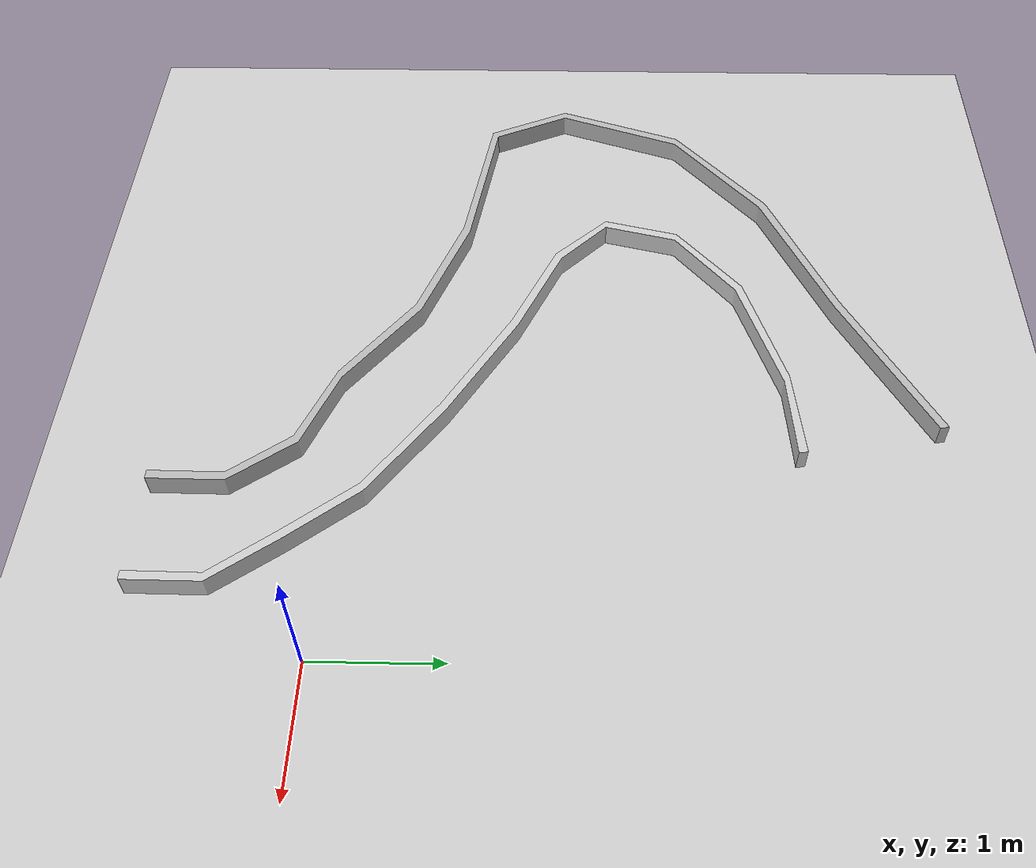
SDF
<sdf version='1.10'>
  <world name='empty'>
    <physics type='ode'>
      <real_time_update_rate>1000</real_time_update_rate>
      <max_step_size>0.001</max_step_size>
      <real_time_factor>1</real_time_factor>
      <ode>
        <solver>
          <type>quick</type>
          <iters>150</iters>
          <precon_iters>0</precon_iters>
          <sor>1.3999999999999999</sor>
          <use_dynamic_moi_rescaling>true</use_dynamic_moi_rescaling>
        </solver>
        <constraints>
          <cfm>1.0000000000000001e-05</cfm>
          <erp>0.20000000000000001</erp>
          <contact_max_correcting_vel>2000</contact_max_correcting_vel>
          <contact_surface_layer>0.01</contact_surface_layer>
        </constraints>
      </ode>
    </physics>
    <plugin name='gz::sim::systems::Physics' filename='gz-sim-physics-system'/>
    <plugin name='gz::sim::systems::UserCommands' filename='gz-sim-user-commands-system'/>
    <plugin name='gz::sim::systems::SceneBroadcaster' filename='gz-sim-scene-broadcaster-system'/>
    <plugin name='gz::sim::systems::Sensors' filename='gz-sim-sensors-system'>
      <render_engine>ogre2</render_engine>
    </plugin>
    <plugin name='gz::sim::systems::Imu' filename='gz-sim-imu-system'/>
    <gravity>0 0 -9.8000000000000007</gravity>
    <magnetic_field>6.0000000000000002e-06 2.3e-05 -4.1999999999999998e-05</magnetic_field>
    <atmosphere type='adiabatic'/>
    <scene>
      <ambient>0.400000006 0.400000006 0.400000006 1</ambient>
      <background>0.699999988 0.699999988 0.699999988 1</background>
      <shadows>true</shadows>
    </scene>
    <model name='ground_plane'>
      <static>true</static>
      <link name='link'>
        <collision name='collision'>
          <geometry>
            <plane>
              <normal>0 0 1</normal>
              <size>100 100</size>
            </plane>
          </geometry>
          <surface>
            <friction>
              <ode/>
            </friction>
            <bounce/>
            <contact/>
          </surface>
        </collision>
        <visual name='visual'>
          <geometry>
            <plane>
              <normal>0 0 1</normal>
              <size>100 100</size>
            </plane>
          </geometry>
          <material>
            <ambient>0.800000012 0.800000012 0.800000012 1</ambient>
            <diffuse>0.800000012 0.800000012 0.800000012 1</diffuse>
            <specular>0.800000012 0.800000012 0.800000012 1</specular>
          </material>
        </visual>
        <pose>0 0 0 0 0 0</pose>
        <inertial>
          <pose>0 0 0 0 0 0</pose>
          <mass>1</mass>
          <inertia>
            <ixx>1</ixx>
            <ixy>0</ixy>
            <ixz>0</ixz>
            <iyy>1</iyy>
            <iyz>0</iyz>
            <izz>1</izz>
          </inertia>
        </inertial>
        <enable_wind>false</enable_wind>
      </link>
      <pose>0 0 0 0 0 0</pose>
      <self_collide>false</self_collide>
    </model>
    <model name='maze'>
      <link name='link'>
        <visual name='visual'>
          <geometry>
            <mesh>
              <uri>file:///root/Shared/turtle_ws/src/turtlebot3_autocontrol/worlds/maze.dae</uri>
            </mesh>
          </geometry>
        </visual>
        <collision name='collision'>
          <geometry>
            <mesh>
              <uri>file:///root/Shared/turtle_ws/src/turtlebot3_autocontrol/worlds/maze.dae</uri>
            </mesh>
          </geometry>
        </collision>
        <pose>0 0 0 0 0 0</pose>
        <inertial>
          <pose>0 0 0 0 0 0</pose>
          <mass>1</mass>
          <inertia>
            <ixx>1</ixx>
            <ixy>0</ixy>
            <ixz>0</ixz>
            <iyy>1</iyy>
            <iyz>0</iyz>
            <izz>1</izz>
          </inertia>
        </inertial>
        <enable_wind>false</enable_wind>
      </link>
      <pose>-1.0203180569446202 -1.4216527982633766 0 0 0 0</pose>
      <static>true</static>
      <self_collide>false</self_collide>
    </model>
    <light name='sun' type='directional'>
      <pose>0 0 10 0 0 0</pose>
      <cast_shadows>true</cast_shadows>
      <intensity>1</intensity>
      <direction>-0.5 0.10000000000000001 -0.90000000000000002</direction>
      <diffuse>0.800000012 0.800000012 0.800000012 1</diffuse>
      <specular>0.200000003 0.200000003 0.200000003 1</specular>
      <attenuation>
        <range>1000</range>
        <linear>0.01</linear>
        <constant>0.90000000000000002</constant>
        <quadratic>0.001</quadratic>
      </attenuation>
      <spot>
        <inner_angle>0</inner_angle>
        <outer_angle>0</outer_angle>
        <falloff>0</falloff>
      </spot>
    </light>
  </world>
</sdf>
